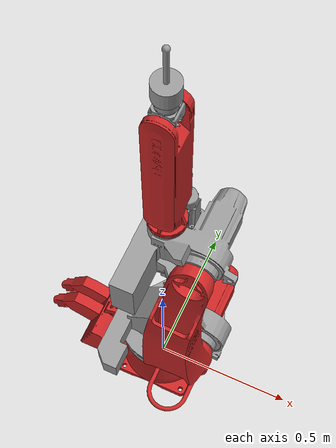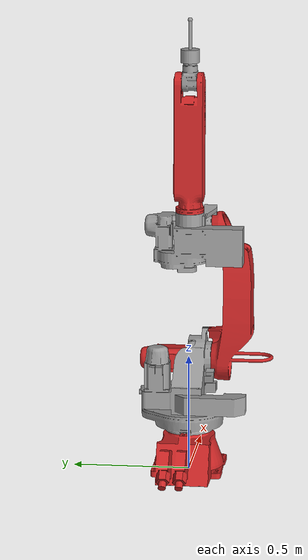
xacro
<?xml version='1.0' encoding='utf-8'?>
<robot name="smartsix" xmlns:xacro="http://www.ros.org/wiki/xacro" >

  <xacro:include filename="$(find comau_description)/robot/smartsix.urdf.xacro" />

  <xacro:include filename="$(find force_torque_sensor)/urdf/gazebo_force_torque_sensor.xacro" />

  <xacro:include filename="$(find comau_description)/robot/ft_sensor_tool.xacro"/>

  <xacro:ft_sensor_tool connected_to="link7" rpy="0 0 0" xyz="0 0 0"/>

</robot>

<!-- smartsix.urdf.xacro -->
<robot name="smartsix" xmlns:xacro="http://www.ros.org/wiki/xacro" >

  <xacro:include filename="$(find comau_description)/robot/smartsix.xacro" />
  <xacro:include filename="$(find comau_description)/robot/smartsix.gazebo.xacro" />

</robot>

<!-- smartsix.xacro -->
<!-- The auto-generated URDF has been modified to be compatible with the last versions of MoveIt! and Gazebo -->

<robot  name="smartsix"  xmlns:xacro="http://www.ros.org/wiki/xacro">

    <!-- ******************** Used for fixing robot to Gazebo 'base_link' ********************-->
    <link name="world"/>

    <joint name="virtual_joint" type="fixed">
        <parent link="world"/>
        <child link="base_link"/>
        <origin xyz="0 0 0" rpy="0 0 0" />
    </joint>

    <!--************************************************BASE_LINK********************************************-->
    <link name="base_link">
        <!--link properties-->
        <inertial>
            <origin xyz="-0.1006 0.0026243 0.085163" rpy="0 0 0" />
            <mass value="125.01" />
            <inertia ixx="0.81984" ixy="0.081396" ixz="0.085894"
                     iyy="2.5662" iyz="-0.0069399"
                     izz="2.8495" />
        </inertial>

        <visual>
            <origin xyz="0 0 0" rpy="0 0 0" />
            <geometry>
                <mesh filename="package://comau_description/meshes/visual/base_link.dae" />
            </geometry>
            <material name=""/>
        </visual>

        <collision>
            <origin xyz="0 0 0" rpy="0 0 0" />
            <geometry>
                <mesh filename="package://comau_description/meshes/collision/base_link.stl" />
            </geometry>
        </collision>

    </link>

    <!--************************************************LINK 1********************************************-->
    <link name="link1">
        <!--Link properties-->
        <inertial>
            <origin xyz="0.032419 0.017781 0.32549" rpy="0 0 0" />
            <mass value="151.44" />
            <inertia ixx="1.6013" ixy="-0.2321" ixz="-0.2639"
                     iyy="1.8623" iyz="0.16124"
                     izz="2.2996" />
        </inertial>

        <visual>
            <origin xyz="0 0 0" rpy="-3.14159 0 0" />
            <geometry>
                <mesh filename="package://comau_description/meshes/visual/link1.dae" />
            </geometry>
            <material name=""/>
        </visual>

        <collision>
            <origin xyz="0 0 0" rpy="-3.14159 0 0" />
            <geometry>
                <mesh filename="package://comau_description/meshes/collision/link1.stl" />
            </geometry>
        </collision>

    </link>

    <joint name="joint1" type="revolute">
        <!--Joint properties-->
        <origin xyz="0 0 0" rpy="-3.14159 0 0" />
        <parent link="base_link" />
        <child link="link1" />
        <axis xyz="0 0 1" />
        <limit lower="-2.967" upper="2.967" effort="1200" velocity="2.443" />
        <dynamics damping="0" friction="0.0" />
    </joint>

     <!--************************************************LINK 2********************************************-->
    <link name="link2">
        <!--Link properties-->
        <inertial>
            <origin xyz="-0.0077653 -0.18316 -0.072606" rpy="0 0 0" />
            <mass value="49.718" />
            <inertia ixx="1.5405" ixy="-0.0099977" ixz="-0.01091"
                     iyy="0.25628" iyz="-0.0071736"
                     izz="1.4883" />
        </inertial>

        <visual>
            <origin xyz="0 0 0" rpy="0 0 0" />
            <geometry>
                <mesh filename="package://comau_description/meshes/visual/link2.dae" />
            </geometry>
            <material name=""/>
        </visual>

        <collision>
            <origin xyz="0 0 0" rpy="0 0 0" />
            <geometry>
                <mesh filename="package://comau_description/meshes/collision/link2.stl" />
            </geometry>
        </collision>

    </link>

    <joint name="joint2" type="revolute">
        <origin xyz="0.15 0 -0.45" rpy="1.5708 0 0" />
        <parent link="link1" />
        <child link="link2" />
        <axis xyz="0 0 1" />
        <limit lower="-1.4835" upper="2.7052" effort="1200" velocity="2.792" />
        <dynamics damping="0" friction="0.0" />
    </joint>

    <!--************************************************LINK 3********************************************-->
    <link name="link3">
        <inertial>
            <origin xyz="0.0943 -0.028471 -0.0076351" rpy="0 0 0" />
            <mass value="82.663" />
            <inertia ixx="0.7046" ixy="0.075791" ixz="0.07304"
                     iyy="0.80675" iyz="0.037263"
                     izz="0.59063" />
        </inertial>

        <visual>
            <origin xyz="0 0 0" rpy="3.1415 0 0" />
            <geometry>
                <mesh filename="package://comau_description/meshes/visual/link3.dae" />
            </geometry>
             <material name=""/>
        </visual>

        <collision>
            <origin xyz="0 0 0" rpy="3.1415 0 0" />
            <geometry>
                <mesh filename="package://comau_description/meshes/collision/link3.stl" />
            </geometry>
        </collision>

    </link>

    <joint name="joint3" type="revolute">
        <origin xyz="0 -0.59 0" rpy="3.1415 0 3.1415" />-->
        <parent link="link2" />
        <child link="link3" />
        <axis xyz="0 0 1" />
        <limit lower="-3.1415" upper="3.1415" effort="1200" velocity="2.967" /> <!-- da capire -->
        <dynamics damping="0" friction="0.0" />
    </joint>

     <!--************************************************LINK 4******************************************** -->
    <link name="link4">
        <inertial>
            <origin xyz="-2.2301E-05 0.0024419 -0.28366" rpy="0 0 0" />
            <mass value="50.29" />
            <inertia ixx="1.1939" ixy="3.7291E-05" ixz="0.00017106"
                     iyy="1.1587" iyz="-0.0046627"
                     izz="0.10717" />
        </inertial>

        <visual>
            <origin xyz="0 0 -0.64707" rpy="0 3.1415 0" />
            <geometry>
                <mesh filename="package://comau_description/meshes/visual/link4.dae" />
            </geometry>
            <material name=""/>
        </visual>

        <collision>
            <origin xyz="0 0 -0.64707" rpy="0 3.1415 0" />
            <geometry>
                <mesh filename="package://comau_description/meshes/collision/link4.stl" />
            </geometry>
        </collision>

    </link>

    <joint name="joint4" type="revolute">
        <origin xyz="0.13 0 0" rpy="-1.5708 0 0" />
        <parent link="link3" />
        <child link="link4" />
        <axis xyz="0 0 1" />
        <limit lower="-3.6651" upper="3.6651" effort="11.7" velocity="10.47" />
        <dynamics damping="0" friction="0.0" />
    </joint>

    <!--************************************************LINK 5********************************************-->
    <link name="link5">
        <inertial>
            <origin xyz="-7.297E-05 0.020653 0.00074202" rpy="0 0 0" />
            <mass value="3.6523" />
            <inertia ixx="0.0047313" ixy="-3.1659E-06" ixz="-4.152E-07"
                     iyy="0.0027359" iyz="6.4593E-05"
                     izz="0.0042881" />
        </inertial>

        <visual>
            <origin xyz="0 0 0" rpy="0 0 0" />
            <geometry>
                <mesh filename="package://comau_description/meshes/visual/link5.dae" />
            </geometry>
            <material name=""/>
        </visual>

        <collision>
            <origin xyz="0 0 0" rpy="0 0 0" />
            <geometry>
                <mesh filename="package://comau_description/meshes/collision/link5.stl" />
            </geometry>
        </collision>

    </link>

    <joint name="joint5" type="revolute">
        <origin xyz="0.0 0.0 -0.64707" rpy="-1.5708 0 0" />
        <origin xyz="0 0 0" rpy="1.5708 0 0" />
        <parent link="link4" />
        <child link="link5" />
        <axis xyz="0 0 1" />
        <limit lower="-2.2689" upper="2.2689" effort="11.7" velocity="6.545" />
        <dynamics damping="0" friction="0.0" />
    </joint>

     <!--************************************************LINK 6********************************************-->
    <link name="link6">
        <inertial>
            <origin xyz="-0.00066992 3.0689E-05 -0.0074649" rpy="0 0 0" />
            <mass value="0.26849" />
            <inertia ixx="6.9791E-05" ixy="-5.4006E-09" ixz="1.6317E-07"
                     iyy="6.3335E-05" iyz="3.4815E-08"
                     izz="0.00012406" />
        </inertial>

        <visual>
            <origin xyz="0 0 0" rpy="0 0 0" />
            <geometry>
                <mesh filename="package://comau_description/meshes/visual/link6.dae" />
            </geometry>
            <material name=""/>
        </visual>

        <collision>
            <origin xyz="0 0 0" rpy="0 0 0" />
            <geometry>
                <mesh filename="package://comau_description/meshes/collision/link6.stl" />
            </geometry>
        </collision>

    </link>

    <joint name="joint6" type="revolute">
        <origin xyz="0 0.095 0" rpy="-1.5708 3.1415 0" />
        <parent link="link5" />
        <child link="link6" />
        <axis xyz="0 0 1" />
        <limit lower="-47.1238" upper="47.1238" effort="5.8" velocity="9.6" />
        <dynamics damping="0" friction="0.0" />
    </joint>

    <!--************************************************FIXED LINK 7********************************************-->

    <link name="link7"/>

    <joint name="joint7" type="fixed">
        <origin rpy="0 0 0" xyz="0 0 0" />
        <parent link="link6" />
        <child link="link7" />
    </joint>

</robot>

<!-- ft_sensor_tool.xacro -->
<robot xmlns:xacro="http://www.ros.org/wiki/xacro" name="ft_sensor_tool">

    <xacro:macro name="ft_sensor_tool" params="connected_to:='' xyz:='0 0 0' rpy:='0 0 0'">
        <xacro:unless value="${not connected_to}">
            <joint name="ft_sensor_tool_joint" type="fixed">
                <origin rpy="${rpy}" xyz="${xyz}"/>
                <parent link="${connected_to}"/>
                <child link="ft_sensor_tool_link"/>
            </joint>
        </xacro:unless>

        <link name="ft_sensor_tool_link">
            <inertial>
                <origin xyz="0 0 0" rpy="0 0 0" />
                <mass value="2" />
                <inertia ixx="0.0432" ixy="0" ixz="0"
                        iyy="0.0432" iyz="0"
                        izz="0.08" />
            </inertial>
            <visual>
                <origin rpy="0 0 0" xyz="0 0 0" />
                <geometry>
                    <mesh filename="package://comau_description/meshes/visual/ft_sensor_tool.dae" />
                </geometry>
            </visual>
            <collision>
                <origin rpy="0 0 0" xyz="0 0 0" />
                <geometry>
                    <mesh filename="package://comau_description/meshes/collision/ft_sensor_tool.stl" />
                </geometry>
            </collision>
        </link>

        <gazebo reference="ft_sensor_tool_link">
            <selfCollide>true</selfCollide>
            <material>Gazebo/Grey</material>
        </gazebo>

    </xacro:macro>
</robot>
